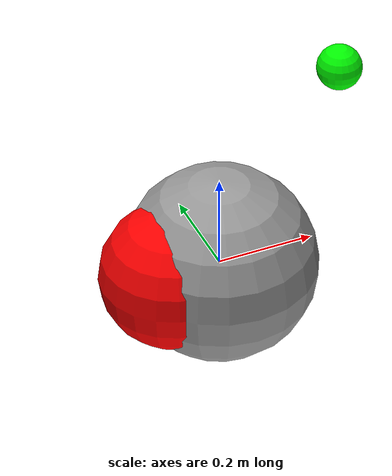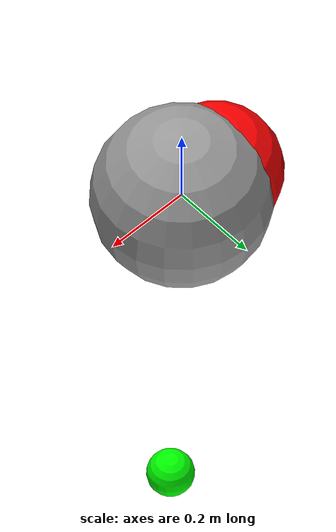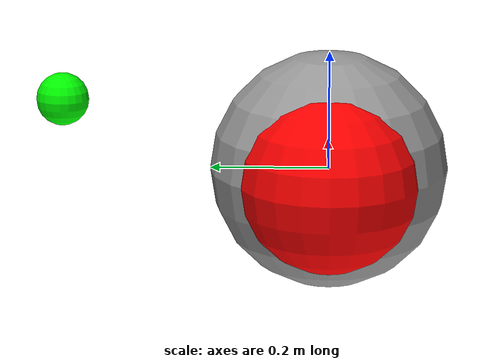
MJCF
<mujoco model="pointmass">
   <compiler inertiafromgeom="true" angle="radian" coordinate="local" />
   <option timestep="0.01" gravity="0 0 0" iterations="100" integrator="Euler" />
   <default>
      <joint armature="0.004" damping="50" limited="true" />
      <geom friction=".5 .1 .1" margin="0.002" condim="1" contype="1" conaffinity="1" rgba="1.0 0.25 0.22 1" />
   </default>

   <worldbody>
		<light diffuse=".5 .5 .5" pos="0 0 3" dir="0 0 -1"/>

      <!-- cameras -->
      <camera name="ebm_custom" pos="0 0 2" quat='1 0 0 0' fovy='60'/>

		<body name="robot" pos="0 0 0">
			<geom name="robot_geom"  type="sphere" rgba="0.6 0.6 0.6 1" pos="0 0 0" size="0.2" />
			<joint name="robot_joint_x" type="slide" pos="0 0 0" axis="1 0 0" range="-1 1" />
			<joint name="robot_joint_y" type="slide" pos="0 0 0" axis="0 1 0" range="-1 1" />
		</body>

      <body name="object" pos="-0.1 0 0">
         <geom name="obj_geom"  type="sphere" rgba="1 0 0 1" pos="0 0 0" size="0.15" />
         <joint name="obj_joint_x" type="slide" pos="0 0 0" axis="1 0 0" range="-1 1" />
         <joint name="obj_joint_y" type="slide" pos="0 0 0" axis="0 1 0" range="-1 1" />
      </body>

		<site name="target" type="sphere" rgba="0 1 0 1" pos="0.5 0.5 0" size="0.05" />
    </worldbody>

   <actuator>
      <position name="actuator_x" joint="robot_joint_x" ctrlrange="-1   1" kp="100"/>
      <position name="actuator_y" joint="robot_joint_y" ctrlrange="-1   1" kp="100"/>

   </actuator>
</mujoco>
